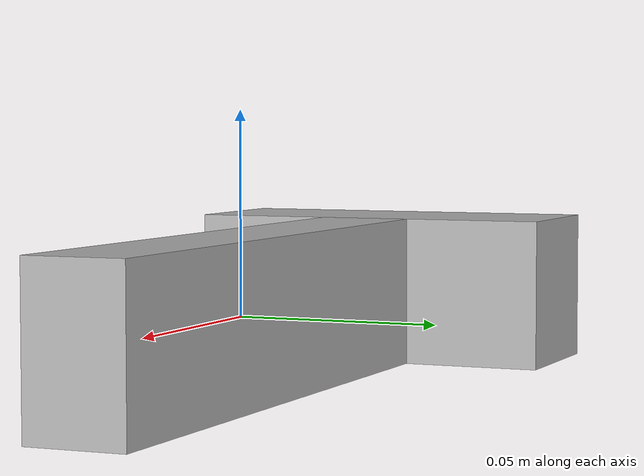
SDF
<?xml version="1.0"?>
<sdf version="1.7">
  <model name="push_t_Ty_control">
    <link name="vertical_link">
      <pose>0.000000 0.000000 0 0 0 0</pose>
      <inertial><mass>0.5</mass>
        <inertia><ixx>0.00009229</ixx><iyy>0.00113333</iyy><izz>0.00109229</izz><ixy>0</ixy><ixz>0</ixz><iyz>0</iyz></inertia></inertial>
      <visual name="vertical_link_visual"><geometry><box><size>0.160000 0.024800 0.040000</size></box></geometry></visual>
      <collision name="vertical_link_collision"><geometry><box><size>0.160000 0.024800 0.040000</size></box></geometry></collision>
      <collision name="c1"><pose>-0.120000 0.049600 -0.020000 0 0 0</pose><geometry><sphere><radius>0.001</radius></sphere></geometry></collision>
      <collision name="c2"><pose>-0.120000 -0.049600 -0.020000 0 0 0</pose><geometry><sphere><radius>0.001</radius></sphere></geometry></collision>
      <collision name="c3"><pose>0.080000 0 -0.020000 0 0 0</pose><geometry><sphere><radius>0.001</radius></sphere></geometry></collision>
    </link>
    <link name="horizontal_link">
      <pose>-0.100000 0.000000 0 0 0 1.5708</pose>
      <inertial><mass>0.5</mass>
        <inertia><ixx>0.00013333</ixx><iyy>0.00047669</iyy><izz>0.00047669</izz><ixy>0</ixy><ixz>0</ixz><iyz>0</iyz></inertia></inertial>
      <visual name="horizontal_link_visual"><geometry><box><size>0.099200 0.040000 0.040000</size></box></geometry></visual>
      <collision name="horizontal_link_collision"><geometry><box><size>0.099200 0.040000 0.040000</size></box></geometry></collision>
    </link>
    <joint name="fixed_joint" type="fixed"><parent>vertical_link</parent><child>horizontal_link</child></joint>
  </model>
</sdf>
